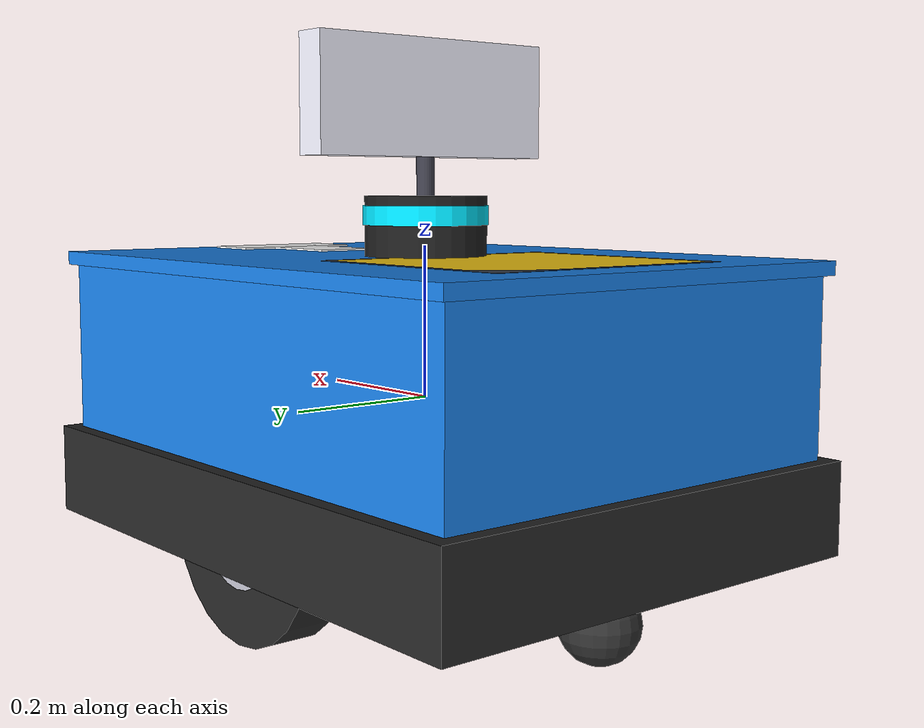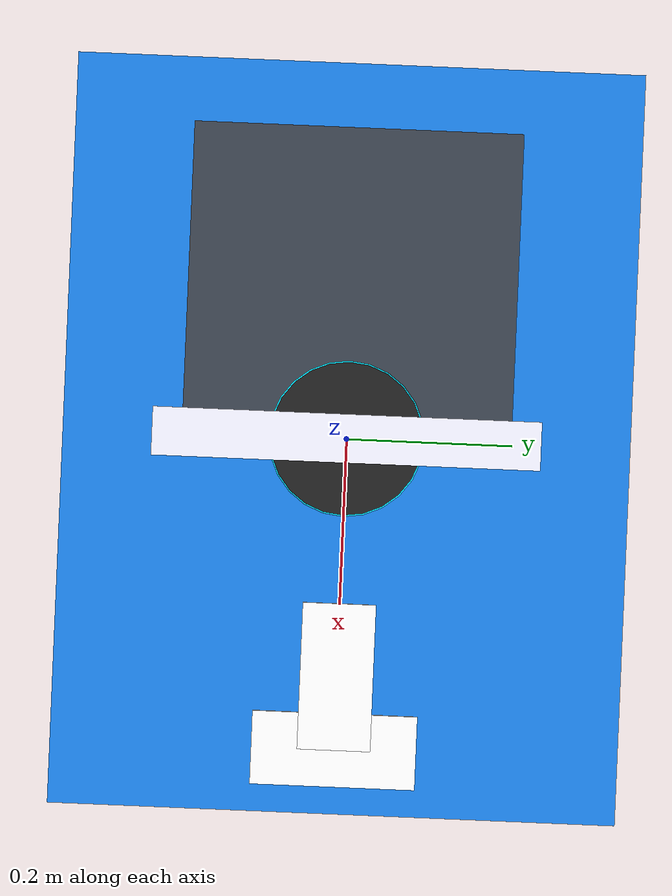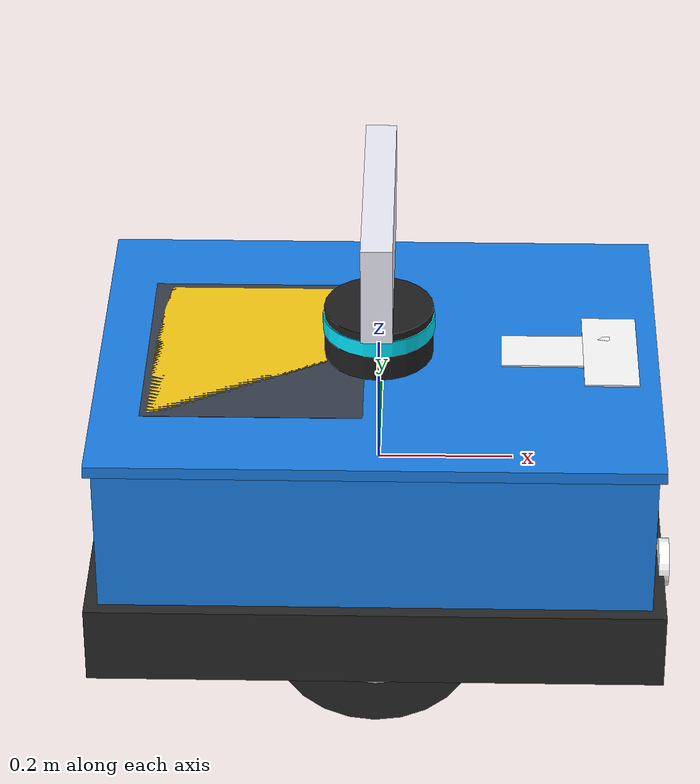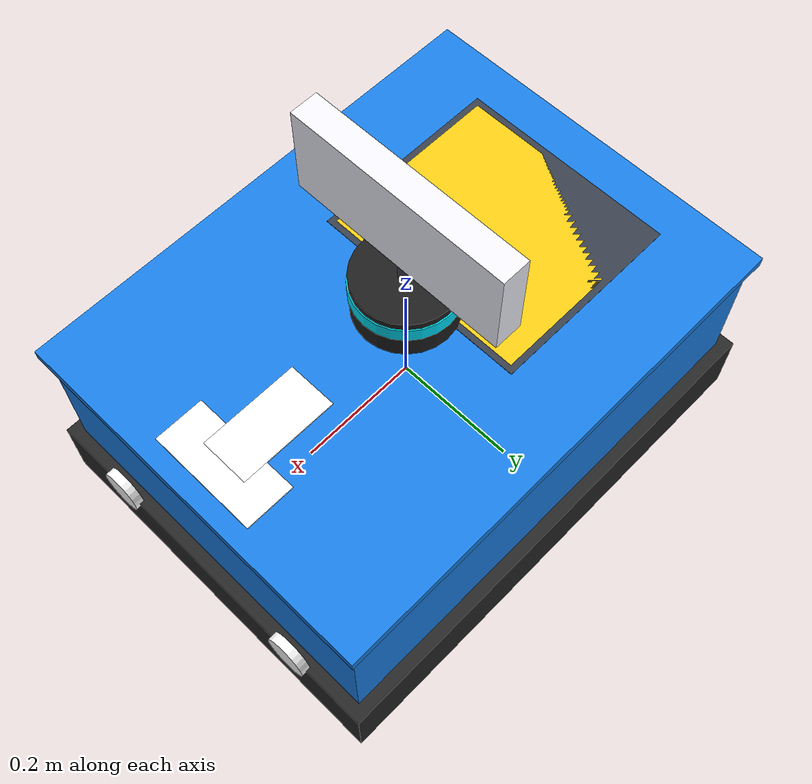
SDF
<?xml version="1.0" ?>
<sdf version="1.10">
  <model name="amr">

    <!-- ── Chassis ─────────────────────────────────────────────────────── -->
    <link name="base_link">
      <inertial>
        <pose>0 0 -0.05 0 0 0</pose>
        <mass>80.0</mass>
        <inertia>
          <ixx>2.9</ixx><ixy>0</ixy><ixz>0</ixz>
          <iyy>5.0</iyy><iyz>0</iyz>
          <izz>6.4</izz>
        </inertia>
      </inertial>

      <!-- Chassis collision box (low friction prevents ground dragging if pitched) -->
      <collision name="chassis_collision">
        <geometry>
          <box><size>0.8 0.6 0.35</size></box>
        </geometry>
        <surface>
          <friction>
            <ode><mu>0.05</mu><mu2>0.05</mu2></ode>
          </friction>
        </surface>
      </collision>

      <!-- Chassis visual -->
      <visual name="chassis_visual">
        <geometry>
          <box><size>0.8 0.6 0.35</size></box>
        </geometry>
        <material>
          <ambient>0.1 0.5 0.9 1</ambient>
          <diffuse>0.1 0.5 0.9 1</diffuse>
          <specular>0.3 0.3 0.3 1</specular>
        </material>
      </visual>

      <!-- Dark protective lower bumper (visual only) -->
      <visual name="bumper_visual">
        <pose>0 0 -0.12 0 0 0</pose>
        <geometry>
          <box><size>0.84 0.64 0.12</size></box>
        </geometry>
        <material>
          <ambient>0.15 0.15 0.15 1</ambient>
          <diffuse>0.15 0.15 0.15 1</diffuse>
        </material>
      </visual>

      <!-- Forward Heading Arrow (Chevron shape pointing +X forward) -->
      <visual name="heading_arrow_stem">
        <pose>0.26 0 0.182 0 0 0</pose>
        <geometry><box><size>0.16 0.08 0.015</size></box></geometry>
        <material><ambient>1 1 1 1</ambient><diffuse>1 1 1 1</diffuse><specular>0.5 0.5 0.5 1</specular></material>
      </visual>
      <visual name="heading_arrow_tip">
        <pose>0.34 0 0.182 0 0 0</pose>
        <geometry><box><size>0.08 0.18 0.015</size></box></geometry>
        <material><ambient>1 1 1 1</ambient><diffuse>1 1 1 1</diffuse><specular>0.5 0.5 0.5 1</specular></material>
      </visual>

      <!-- High-visibility LiDAR turret housing (visual only) -->
      <visual name="lidar_housing_visual">
        <pose>0.0 0 0.22 0 0 0</pose>
        <geometry>
          <cylinder><radius>0.08</radius><length>0.09</length></cylinder>
        </geometry>
        <material>
          <ambient>0.12 0.12 0.12 1</ambient>
          <diffuse>0.12 0.12 0.12 1</diffuse>
        </material>
      </visual>

      <!-- High-visibility LiDAR optic sensor ring (visual only) -->
      <visual name="lidar_ring_visual">
        <pose>0.0 0 0.24 0 0 0</pose>
        <geometry>
          <cylinder><radius>0.082</radius><length>0.025</length></cylinder>
        </geometry>
        <material>
          <ambient>0.0 0.9 1.0 1</ambient>
          <diffuse>0.0 0.9 1.0 1</diffuse>
        </material>
      </visual>

      <!-- Overhead 3D ID Mast & Plaque (Elevated for instant overhead recognition) -->
      <visual name="id_mast_visual">
        <pose>0 0 0.31 0 0 0</pose>
        <geometry><cylinder><radius>0.012</radius><length>0.14</length></cylinder></geometry>
        <material><ambient>0.2 0.2 0.25 1</ambient><diffuse>0.25 0.25 0.30 1</diffuse></material>
      </visual>
      <visual name="id_plaque_backing">
        <pose>0 0 0.39 0 0 0</pose>
        <geometry><box><size>0.04 0.34 0.14</size></box></geometry>
        <material><ambient>0.08 0.10 0.15 1</ambient><diffuse>0.10 0.12 0.18 1</diffuse><specular>0.3 0.3 0.3 1</specular></material>
      </visual>
      <visual name="id_plaque_border">
        <pose>0 0 0.39 0 0 0</pose>
        <geometry><box><size>0.045 0.36 0.15</size></box></geometry>
        <material><ambient>0.9 0.9 0.95 1</ambient><diffuse>0.95 0.95 1.0 1</diffuse></material>
      </visual>

      <!-- Rear Cargo Payload Deck (Visual only) -->
      <visual name="cargo_deck_base">
        <pose>-0.18 0 0.18 0 0 0</pose>
        <geometry><box><size>0.32 0.36 0.015</size></box></geometry>
        <material><ambient>0.18 0.20 0.24 1</ambient><diffuse>0.22 0.25 0.30 1</diffuse><specular>0.2 0.2 0.2 1</specular></material>
      </visual>
      <visual name="cargo_deck_hazard_stripe">
        <pose>-0.18 0 0.185 0 0 0</pose>
        <geometry><box><size>0.30 0.34 0.005</size></box></geometry>
        <material><ambient>0.95 0.75 0.05 1</ambient><diffuse>0.98 0.80 0.08 1</diffuse></material>
      </visual>
      <!-- ROBOT_PAYLOAD_VISUAL -->

      <!-- 360-Degree Perimeter LED Halo Status Ring -->
      <visual name="led_halo_ring">
        <pose>0 0 0.178 0 0 0</pose>
        <geometry><box><size>0.82 0.62 0.018</size></box></geometry>
        <material>
          <ambient>0.1 0.5 0.9 1</ambient>
          <diffuse>0.1 0.5 0.9 1</diffuse>
          <specular>0.8 0.8 0.8 1</specular>
        </material>
      </visual>

      <!-- Twin High-Lumen Forward LED Headlights -->
      <visual name="headlight_left">
        <pose>0.42 0.18 -0.06 0 1.5707963 0</pose>
        <geometry><cylinder><radius>0.035</radius><length>0.015</length></cylinder></geometry>
        <material>
          <ambient>1.0 1.0 1.0 1</ambient>
          <diffuse>1.0 1.0 1.0 1</diffuse>
          <specular>1 1 1 1</specular>
        </material>
      </visual>
      <visual name="headlight_right">
        <pose>0.42 -0.18 -0.06 0 1.5707963 0</pose>
        <geometry><cylinder><radius>0.035</radius><length>0.015</length></cylinder></geometry>
        <material>
          <ambient>1.0 1.0 1.0 1</ambient>
          <diffuse>1.0 1.0 1.0 1</diffuse>
          <specular>1 1 1 1</specular>
        </material>
      </visual>

      <!-- Dual Ball Caster Bearings (Front & Rear, ground-aligned at z=-0.275) -->
      <!-- Front caster: center at z=-0.225, radius 0.05 => bottom at -0.275 (exact ground plane) -->
      <collision name="front_caster_collision">
        <pose>0.32 0 -0.225 0 0 0</pose>
        <geometry>
          <sphere><radius>0.05</radius></sphere>
        </geometry>
        <surface>
          <friction>
            <ode><mu>0.0</mu><mu2>0.0</mu2></ode>
          </friction>
        </surface>
      </collision>
      <visual name="front_caster_visual">
        <pose>0.32 0 -0.225 0 0 0</pose>
        <geometry>
          <sphere><radius>0.05</radius></sphere>
        </geometry>
        <material>
          <ambient>0.2 0.2 0.2 1</ambient>
          <diffuse>0.2 0.2 0.2 1</diffuse>
        </material>
      </visual>

      <!-- Rear caster: center at z=-0.225, radius 0.05 => bottom at -0.275 (exact ground plane) -->
      <collision name="rear_caster_collision">
        <pose>-0.32 0 -0.225 0 0 0</pose>
        <geometry>
          <sphere><radius>0.05</radius></sphere>
        </geometry>
        <surface>
          <friction>
            <ode><mu>0.0</mu><mu2>0.0</mu2></ode>
          </friction>
        </surface>
      </collision>
      <visual name="rear_caster_visual">
        <pose>-0.32 0 -0.225 0 0 0</pose>
        <geometry>
          <sphere><radius>0.05</radius></sphere>
        </geometry>
        <material>
          <ambient>0.2 0.2 0.2 1</ambient>
          <diffuse>0.2 0.2 0.2 1</diffuse>
        </material>
      </visual>

      <!-- 2D LiDAR sensor — high performance CPU ray sensor (eliminates WSLg GPU readback stall) -->
      <sensor name="lidar" type="lidar">
        <pose>0.0 0 0.2 0 0 0</pose>
        <update_rate>5</update_rate>
        <always_on>true</always_on>
        <visualize>false</visualize>
        <topic>scan</topic>
        <lidar>
          <scan>
            <horizontal>
              <samples>72</samples>
              <resolution>1</resolution>
              <min_angle>-3.14159</min_angle>
              <max_angle>3.14159</max_angle>
            </horizontal>
          </scan>
          <range>
            <min>0.1</min>
            <max>10.0</max>
            <resolution>0.01</resolution>
          </range>
          <noise>
            <type>gaussian</type>
            <mean>0.0</mean>
            <stddev>0.01</stddev>
          </noise>
        </lidar>
      </sensor>

      <!-- IMU sensor -->
      <sensor name="imu" type="imu">
        <pose>0 0 0.1 0 0 0</pose>
        <update_rate>100</update_rate>
        <always_on>true</always_on>
        <topic>imu</topic>
        <imu>
          <angular_velocity>
            <x><noise type="gaussian"><mean>0</mean><stddev>0.001</stddev></noise></x>
            <y><noise type="gaussian"><mean>0</mean><stddev>0.001</stddev></noise></y>
            <z><noise type="gaussian"><mean>0</mean><stddev>0.001</stddev></noise></z>
          </angular_velocity>
          <linear_acceleration>
            <x><noise type="gaussian"><mean>0</mean><stddev>0.01</stddev></noise></x>
            <y><noise type="gaussian"><mean>0</mean><stddev>0.01</stddev></noise></y>
            <z><noise type="gaussian"><mean>0</mean><stddev>0.01</stddev></noise></z>
          </linear_acceleration>
        </imu>
      </sensor>
    </link>

    <!-- ── Left wheel ──────────────────────────────────────────────────── -->
    <link name="left_wheel">
      <pose>0 0.26 -0.125 -1.5707963 0 0</pose>
      <inertial>
        <mass>2.0</mass>
        <inertia>
          <ixx>0.0051</ixx><ixy>0</ixy><ixz>0</ixz>
          <iyy>0.0051</iyy><iyz>0</iyz>
          <izz>0.009</izz>
        </inertia>
      </inertial>
      <collision name="collision">
        <geometry>
          <cylinder><radius>0.15</radius><length>0.06</length></cylinder>
        </geometry>
        <surface>
          <friction>
            <ode><mu>1.0</mu><mu2>0.5</mu2></ode>
          </friction>
        </surface>
      </collision>
      <visual name="tire_visual">
        <geometry>
          <cylinder><radius>0.15</radius><length>0.06</length></cylinder>
        </geometry>
        <material>
          <ambient>0.15 0.15 0.15 1</ambient>
          <diffuse>0.15 0.15 0.15 1</diffuse>
        </material>
      </visual>
      <visual name="hubcap_visual">
        <geometry>
          <cylinder><radius>0.08</radius><length>0.065</length></cylinder>
        </geometry>
        <material>
          <ambient>0.75 0.75 0.8 1</ambient>
          <diffuse>0.75 0.75 0.8 1</diffuse>
          <specular>0.5 0.5 0.5 1</specular>
        </material>
      </visual>
    </link>

    <!-- ── Right wheel ─────────────────────────────────────────────────── -->
    <link name="right_wheel">
      <pose>0 -0.26 -0.125 -1.5707963 0 0</pose>
      <inertial>
        <mass>2.0</mass>
        <inertia>
          <ixx>0.0051</ixx><ixy>0</ixy><ixz>0</ixz>
          <iyy>0.0051</iyy><iyz>0</iyz>
          <izz>0.009</izz>
        </inertia>
      </inertial>
      <collision name="collision">
        <geometry>
          <cylinder><radius>0.15</radius><length>0.06</length></cylinder>
        </geometry>
        <surface>
          <friction>
            <ode><mu>1.0</mu><mu2>0.5</mu2></ode>
          </friction>
        </surface>
      </collision>
      <visual name="tire_visual">
        <geometry>
          <cylinder><radius>0.15</radius><length>0.06</length></cylinder>
        </geometry>
        <material>
          <ambient>0.15 0.15 0.15 1</ambient>
          <diffuse>0.15 0.15 0.15 1</diffuse>
        </material>
      </visual>
      <visual name="hubcap_visual">
        <geometry>
          <cylinder><radius>0.08</radius><length>0.065</length></cylinder>
        </geometry>
        <material>
          <ambient>0.75 0.75 0.8 1</ambient>
          <diffuse>0.75 0.75 0.8 1</diffuse>
          <specular>0.5 0.5 0.5 1</specular>
        </material>
      </visual>
    </link>

    <!-- ── Joints ──────────────────────────────────────────────────────── -->
    <joint name="left_wheel_joint" type="revolute">
      <parent>base_link</parent>
      <child>left_wheel</child>
      <axis>
        <xyz expressed_in="__model__">0 1 0</xyz>
        <limit><lower>-1e+16</lower><upper>1e+16</upper></limit>
      </axis>
    </joint>

    <joint name="right_wheel_joint" type="revolute">
      <parent>base_link</parent>
      <child>right_wheel</child>
      <axis>
        <xyz expressed_in="__model__">0 1 0</xyz>
        <limit><lower>-1e+16</lower><upper>1e+16</upper></limit>
      </axis>
    </joint>

    <!-- ── Differential drive plugin ───────────────────────────────────── -->
    <plugin filename="gz-sim-diff-drive-system"
            name="gz::sim::systems::DiffDrive">
      <left_joint>left_wheel_joint</left_joint>
      <right_joint>right_wheel_joint</right_joint>
      <wheel_separation>0.52</wheel_separation>
      <wheel_radius>0.15</wheel_radius>
      <odom_publish_frequency>20</odom_publish_frequency>
      <max_linear_accel>3.0</max_linear_accel>
      <max_linear_decel>4.0</max_linear_decel>
      <max_angular_accel>6.28</max_angular_accel>
      <max_linear_velocity>1.5</max_linear_velocity>
      <max_angular_velocity>3.14</max_angular_velocity>
      <frame_id>odom</frame_id>
      <child_frame_id>base_link</child_frame_id>
      <topic>cmd_vel</topic>
      <odom_topic>odometry</odom_topic>
      <tf_topic>tf</tf_topic>
    </plugin>

    <!-- ── Joint state publisher ───────────────────────────────────────── -->
    <plugin filename="gz-sim-joint-state-publisher-system"
            name="gz::sim::systems::JointStatePublisher"/>

  </model>
</sdf>
